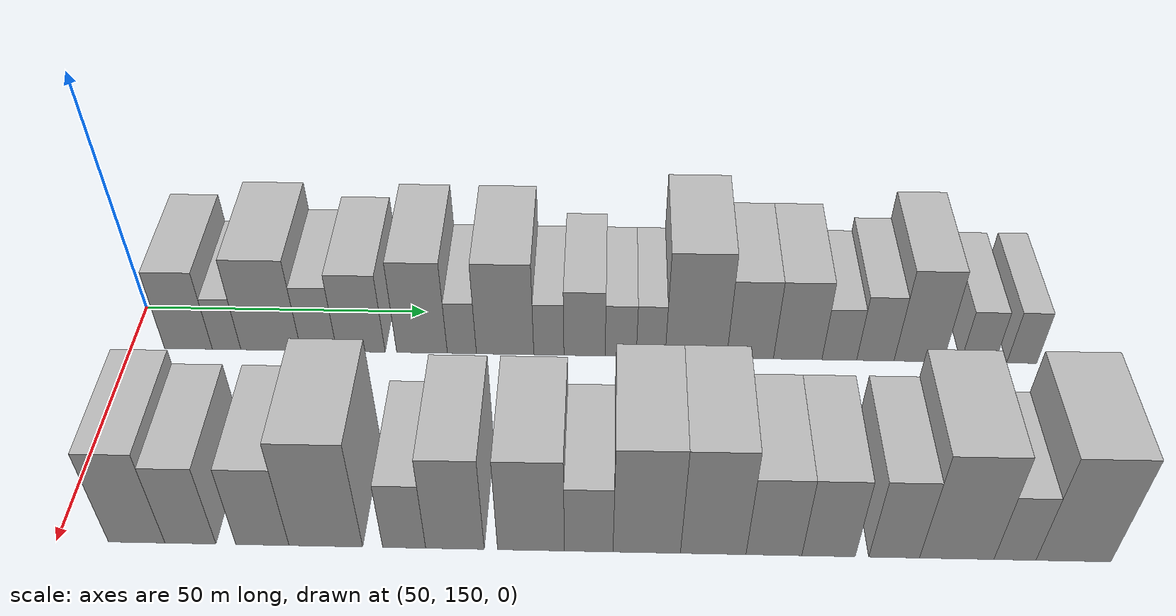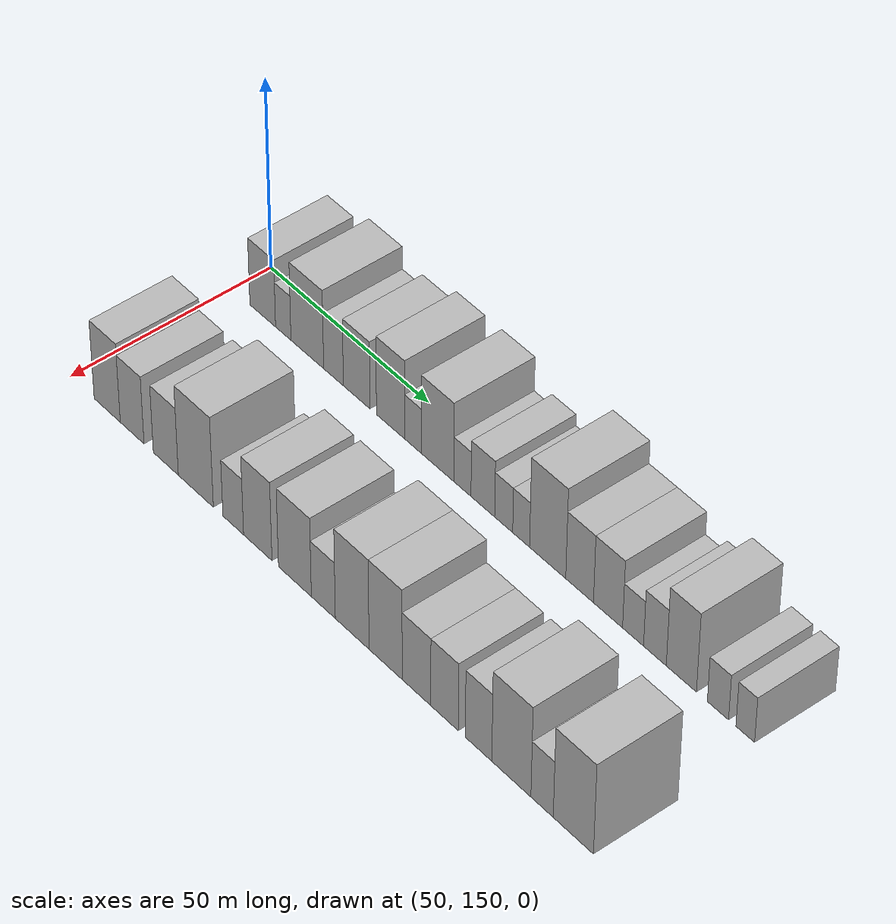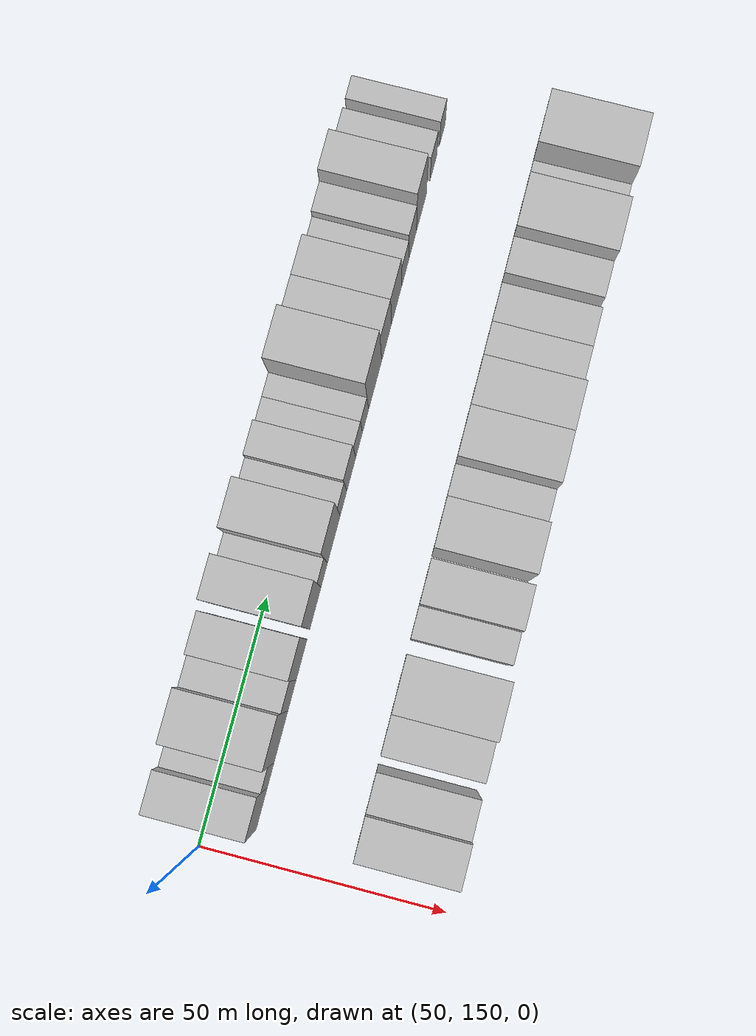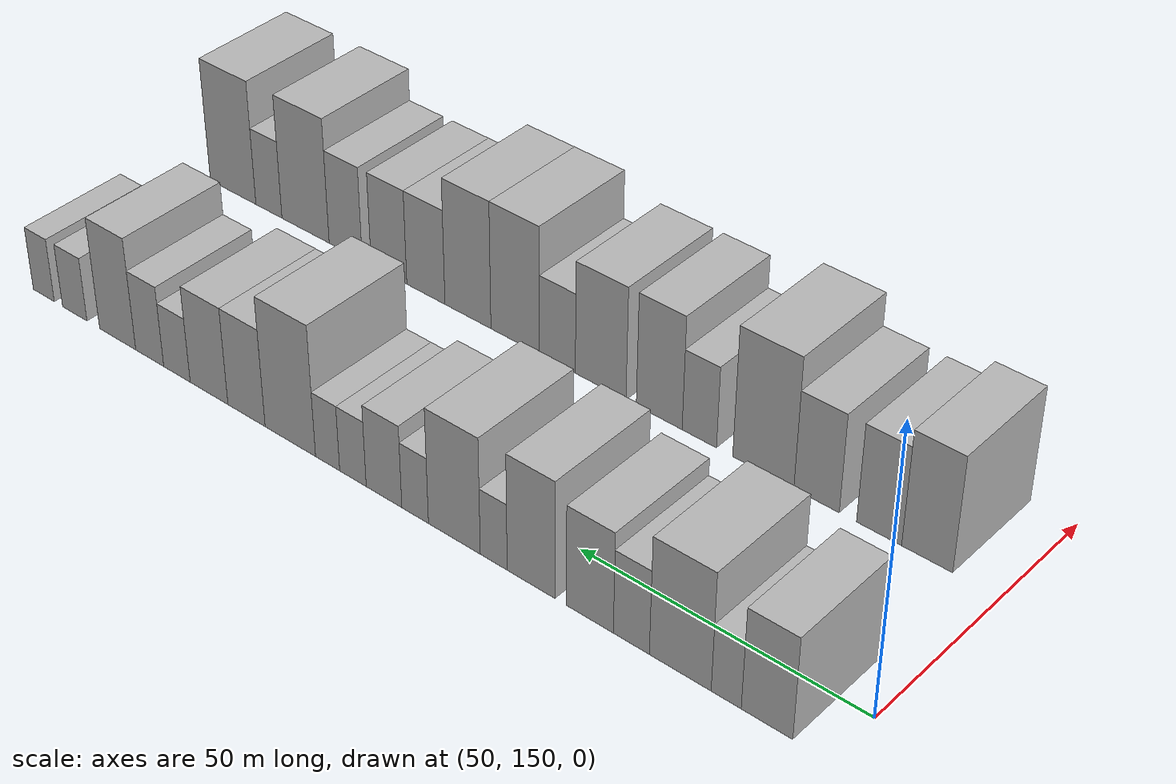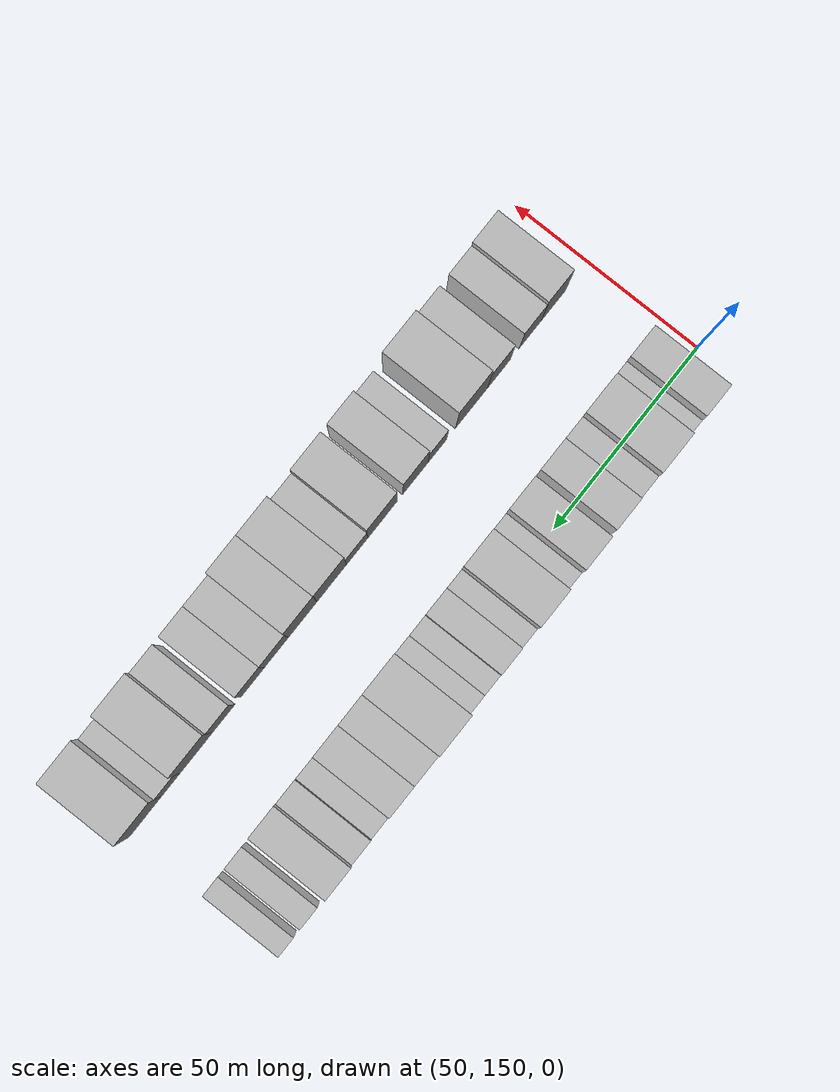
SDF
<sdf version="1.6">
 <world name="default">
  <model name="building_53">
   <static>1</static>
   <pose>50.0000 159.9945 0 0.000000 0.000000 0.000000</pose>
   <link name="link">
    <pose>0 0 9.00 0 0 0</pose>
    <collision name="collision"><geometry><box><size>20.0000 8.3284 18.0000</size></box></geometry></collision>
    <visual name="visual">
     <cast_shadows>0</cast_shadows>
     <geometry><box><size>20.0000 8.3284 18.0000</size></box></geometry>
     <material>
      <script>
       <uri>model://HANNAS_wall/materials/scripts</uri>
       <uri>model://HANNAS_wall/materials/textures</uri>
       <name>vrc/HANNAS_wall</name>
      </script>
     </material>
    </visual>
   </link>
  </model>
  <model name="building_54">
   <static>1</static>
   <pose>50.0000 166.6386 0 0.000000 0.000000 0.000000</pose>
   <link name="link">
    <pose>0 0 6.00 0 0 0</pose>
    <collision name="collision"><geometry><box><size>20.0000 4.9598 12.0000</size></box></geometry></collision>
    <visual name="visual">
     <cast_shadows>0</cast_shadows>
     <geometry><box><size>20.0000 4.9598 12.0000</size></box></geometry>
     <material>
      <script>
       <uri>model://HANNAS_wall/materials/scripts</uri>
       <uri>model://HANNAS_wall/materials/textures</uri>
       <name>vrc/HANNAS_wall</name>
      </script>
     </material>
    </visual>
   </link>
  </model>
  <model name="building_55">
   <static>1</static>
   <pose>50.0000 174.3444 0 0.000000 0.000000 0.000000</pose>
   <link name="link">
    <pose>0 0 10.50 0 0 0</pose>
    <collision name="collision"><geometry><box><size>20.0000 10.4516 21.0000</size></box></geometry></collision>
    <visual name="visual">
     <cast_shadows>0</cast_shadows>
     <geometry><box><size>20.0000 10.4516 21.0000</size></box></geometry>
     <material>
      <script>
       <uri>model://HANNAS_wall/materials/scripts</uri>
       <uri>model://HANNAS_wall/materials/textures</uri>
       <name>vrc/HANNAS_wall</name>
      </script>
     </material>
    </visual>
   </link>
  </model>
  <model name="building_56">
   <static>1</static>
   <pose>50.0000 182.6839 0 0.000000 0.000000 0.000000</pose>
   <link name="link">
    <pose>0 0 7.50 0 0 0</pose>
    <collision name="collision"><geometry><box><size>20.0000 6.2274 15.0000</size></box></geometry></collision>
    <visual name="visual">
     <cast_shadows>0</cast_shadows>
     <geometry><box><size>20.0000 6.2274 15.0000</size></box></geometry>
     <material>
      <script>
       <uri>model://HANNAS_wall/materials/scripts</uri>
       <uri>model://HANNAS_wall/materials/textures</uri>
       <name>vrc/HANNAS_wall</name>
      </script>
     </material>
    </visual>
   </link>
  </model>
  <model name="building_57">
   <static>1</static>
   <pose>50.0000 189.9782 0 0.000000 0.000000 0.000000</pose>
   <link name="link">
    <pose>0 0 9.00 0 0 0</pose>
    <collision name="collision"><geometry><box><size>20.0000 8.3613 18.0000</size></box></geometry></collision>
    <visual name="visual">
     <cast_shadows>0</cast_shadows>
     <geometry><box><size>20.0000 8.3613 18.0000</size></box></geometry>
     <material>
      <script>
       <uri>model://HANNAS_wall/materials/scripts</uri>
       <uri>model://HANNAS_wall/materials/textures</uri>
       <name>vrc/HANNAS_wall</name>
      </script>
     </material>
    </visual>
   </link>
  </model>
  <model name="building_58">
   <static>1</static>
   <pose>50.0000 200.5402 0 0.000000 0.000000 0.000000</pose>
   <link name="link">
    <pose>0 0 10.50 0 0 0</pose>
    <collision name="collision"><geometry><box><size>20.0000 8.7629 21.0000</size></box></geometry></collision>
    <visual name="visual">
     <cast_shadows>0</cast_shadows>
     <geometry><box><size>20.0000 8.7629 21.0000</size></box></geometry>
     <material>
      <script>
       <uri>model://HANNAS_wall/materials/scripts</uri>
       <uri>model://HANNAS_wall/materials/textures</uri>
       <name>vrc/HANNAS_wall</name>
      </script>
     </material>
    </visual>
   </link>
  </model>
  <model name="building_59">
   <static>1</static>
   <pose>50.0000 207.4315 0 0.000000 0.000000 0.000000</pose>
   <link name="link">
    <pose>0 0 6.00 0 0 0</pose>
    <collision name="collision"><geometry><box><size>20.0000 5.0197 12.0000</size></box></geometry></collision>
    <visual name="visual">
     <cast_shadows>0</cast_shadows>
     <geometry><box><size>20.0000 5.0197 12.0000</size></box></geometry>
     <material>
      <script>
       <uri>model://HANNAS_wall/materials/scripts</uri>
       <uri>model://HANNAS_wall/materials/textures</uri>
       <name>vrc/HANNAS_wall</name>
      </script>
     </material>
    </visual>
   </link>
  </model>
  <model name="building_60">
   <static>1</static>
   <pose>50.0000 214.8930 0 0.000000 0.000000 0.000000</pose>
   <link name="link">
    <pose>0 0 10.50 0 0 0</pose>
    <collision name="collision"><geometry><box><size>20.0000 9.9031 21.0000</size></box></geometry></collision>
    <visual name="visual">
     <cast_shadows>0</cast_shadows>
     <geometry><box><size>20.0000 9.9031 21.0000</size></box></geometry>
     <material>
      <script>
       <uri>model://HANNAS_wall/materials/scripts</uri>
       <uri>model://HANNAS_wall/materials/textures</uri>
       <name>vrc/HANNAS_wall</name>
      </script>
     </material>
    </visual>
   </link>
  </model>
  <model name="building_61">
   <static>1</static>
   <pose>50.0000 222.4428 0 0.000000 0.000000 0.000000</pose>
   <link name="link">
    <pose>0 0 6.00 0 0 0</pose>
    <collision name="collision"><geometry><box><size>20.0000 5.1965 12.0000</size></box></geometry></collision>
    <visual name="visual">
     <cast_shadows>0</cast_shadows>
     <geometry><box><size>20.0000 5.1965 12.0000</size></box></geometry>
     <material>
      <script>
       <uri>model://HANNAS_wall/materials/scripts</uri>
       <uri>model://HANNAS_wall/materials/textures</uri>
       <name>vrc/HANNAS_wall</name>
      </script>
     </material>
    </visual>
   </link>
  </model>
  <model name="building_62">
   <static>1</static>
   <pose>50.0000 228.5811 0 0.000000 0.000000 0.000000</pose>
   <link name="link">
    <pose>0 0 7.50 0 0 0</pose>
    <collision name="collision"><geometry><box><size>20.0000 7.0801 15.0000</size></box></geometry></collision>
    <visual name="visual">
     <cast_shadows>0</cast_shadows>
     <geometry><box><size>20.0000 7.0801 15.0000</size></box></geometry>
     <material>
      <script>
       <uri>model://HANNAS_wall/materials/scripts</uri>
       <uri>model://HANNAS_wall/materials/textures</uri>
       <name>vrc/HANNAS_wall</name>
      </script>
     </material>
    </visual>
   </link>
  </model>
  <model name="building_63">
   <static>1</static>
   <pose>50.0000 234.8005 0 0.000000 0.000000 0.000000</pose>
   <link name="link">
    <pose>0 0 6.00 0 0 0</pose>
    <collision name="collision"><geometry><box><size>20.0000 5.3588 12.0000</size></box></geometry></collision>
    <visual name="visual">
     <cast_shadows>0</cast_shadows>
     <geometry><box><size>20.0000 5.3588 12.0000</size></box></geometry>
     <material>
      <script>
       <uri>model://HANNAS_wall/materials/scripts</uri>
       <uri>model://HANNAS_wall/materials/textures</uri>
       <name>vrc/HANNAS_wall</name>
      </script>
     </material>
    </visual>
   </link>
  </model>
  <model name="building_64">
   <static>1</static>
   <pose>50.0000 239.9629 0 0.000000 0.000000 0.000000</pose>
   <link name="link">
    <pose>0 0 6.00 0 0 0</pose>
    <collision name="collision"><geometry><box><size>20.0000 4.9660 12.0000</size></box></geometry></collision>
    <visual name="visual">
     <cast_shadows>0</cast_shadows>
     <geometry><box><size>20.0000 4.9660 12.0000</size></box></geometry>
     <material>
      <script>
       <uri>model://HANNAS_wall/materials/scripts</uri>
       <uri>model://HANNAS_wall/materials/textures</uri>
       <name>vrc/HANNAS_wall</name>
      </script>
     </material>
    </visual>
   </link>
  </model>
  <model name="building_65">
   <static>1</static>
   <pose>50.0000 247.7345 0 0.000000 0.000000 0.000000</pose>
   <link name="link">
    <pose>0 0 12.00 0 0 0</pose>
    <collision name="collision"><geometry><box><size>20.0000 10.5771 24.0000</size></box></geometry></collision>
    <visual name="visual">
     <cast_shadows>0</cast_shadows>
     <geometry><box><size>20.0000 10.5771 24.0000</size></box></geometry>
     <material>
      <script>
       <uri>model://HANNAS_wall/materials/scripts</uri>
       <uri>model://HANNAS_wall/materials/textures</uri>
       <name>vrc/HANNAS_wall</name>
      </script>
     </material>
    </visual>
   </link>
  </model>
  <model name="building_66">
   <static>1</static>
   <pose>50.0000 257.0265 0 0.000000 0.000000 0.000000</pose>
   <link name="link">
    <pose>0 0 9.00 0 0 0</pose>
    <collision name="collision"><geometry><box><size>20.0000 8.0067 18.0000</size></box></geometry></collision>
    <visual name="visual">
     <cast_shadows>0</cast_shadows>
     <geometry><box><size>20.0000 8.0067 18.0000</size></box></geometry>
     <material>
      <script>
       <uri>model://HANNAS_wall/materials/scripts</uri>
       <uri>model://HANNAS_wall/materials/textures</uri>
       <name>vrc/HANNAS_wall</name>
      </script>
     </material>
    </visual>
   </link>
  </model>
  <model name="building_67">
   <static>1</static>
   <pose>50.0000 265.1868 0 0.000000 0.000000 0.000000</pose>
   <link name="link">
    <pose>0 0 9.00 0 0 0</pose>
    <collision name="collision"><geometry><box><size>20.0000 8.3139 18.0000</size></box></geometry></collision>
    <visual name="visual">
     <cast_shadows>0</cast_shadows>
     <geometry><box><size>20.0000 8.3139 18.0000</size></box></geometry>
     <material>
      <script>
       <uri>model://HANNAS_wall/materials/scripts</uri>
       <uri>model://HANNAS_wall/materials/textures</uri>
       <name>vrc/HANNAS_wall</name>
      </script>
     </material>
    </visual>
   </link>
  </model>
  <model name="building_68">
   <static>1</static>
   <pose>50.0000 272.3159 0 0.000000 0.000000 0.000000</pose>
   <link name="link">
    <pose>0 0 6.00 0 0 0</pose>
    <collision name="collision"><geometry><box><size>20.0000 5.9443 12.0000</size></box></geometry></collision>
    <visual name="visual">
     <cast_shadows>0</cast_shadows>
     <geometry><box><size>20.0000 5.9443 12.0000</size></box></geometry>
     <material>
      <script>
       <uri>model://HANNAS_wall/materials/scripts</uri>
       <uri>model://HANNAS_wall/materials/textures</uri>
       <name>vrc/HANNAS_wall</name>
      </script>
     </material>
    </visual>
   </link>
  </model>
  <model name="building_69">
   <static>1</static>
   <pose>50.0000 278.4816 0 0.000000 0.000000 0.000000</pose>
   <link name="link">
    <pose>0 0 7.50 0 0 0</pose>
    <collision name="collision"><geometry><box><size>20.0000 6.3872 15.0000</size></box></geometry></collision>
    <visual name="visual">
     <cast_shadows>0</cast_shadows>
     <geometry><box><size>20.0000 6.3872 15.0000</size></box></geometry>
     <material>
      <script>
       <uri>model://HANNAS_wall/materials/scripts</uri>
       <uri>model://HANNAS_wall/materials/textures</uri>
       <name>vrc/HANNAS_wall</name>
      </script>
     </material>
    </visual>
   </link>
  </model>
  <model name="building_70">
   <static>1</static>
   <pose>50.0000 285.8795 0 0.000000 0.000000 0.000000</pose>
   <link name="link">
    <pose>0 0 10.50 0 0 0</pose>
    <collision name="collision"><geometry><box><size>20.0000 8.4086 21.0000</size></box></geometry></collision>
    <visual name="visual">
     <cast_shadows>0</cast_shadows>
     <geometry><box><size>20.0000 8.4086 21.0000</size></box></geometry>
     <material>
      <script>
       <uri>model://HANNAS_wall/materials/scripts</uri>
       <uri>model://HANNAS_wall/materials/textures</uri>
       <name>vrc/HANNAS_wall</name>
      </script>
     </material>
    </visual>
   </link>
  </model>
  <model name="building_71">
   <static>1</static>
   <pose>50.0000 296.0022 0 0.000000 0.000000 0.000000</pose>
   <link name="link">
    <pose>0 0 6.00 0 0 0</pose>
    <collision name="collision"><geometry><box><size>20.0000 5.8367 12.0000</size></box></geometry></collision>
    <visual name="visual">
     <cast_shadows>0</cast_shadows>
     <geometry><box><size>20.0000 5.8367 12.0000</size></box></geometry>
     <material>
      <script>
       <uri>model://HANNAS_wall/materials/scripts</uri>
       <uri>model://HANNAS_wall/materials/textures</uri>
       <name>vrc/HANNAS_wall</name>
      </script>
     </material>
    </visual>
   </link>
  </model>
  <model name="building_72">
   <static>1</static>
   <pose>50.0000 303.4666 0 0.000000 0.000000 0.000000</pose>
   <link name="link">
    <pose>0 0 6.00 0 0 0</pose>
    <collision name="collision"><geometry><box><size>20.0000 5.0923 12.0000</size></box></geometry></collision>
    <visual name="visual">
     <cast_shadows>0</cast_shadows>
     <geometry><box><size>20.0000 5.0923 12.0000</size></box></geometry>
     <material>
      <script>
       <uri>model://HANNAS_wall/materials/scripts</uri>
       <uri>model://HANNAS_wall/materials/textures</uri>
       <name>vrc/HANNAS_wall</name>
      </script>
     </material>
    </visual>
   </link>
  </model>
  <model name="building_126">
   <static>1</static>
   <pose>90.0000 162.1043 0 0.000000 0.000000 0.000000</pose>
   <link name="link">
    <pose>0 0 10.50 0 0 0</pose>
    <collision name="collision"><geometry><box><size>20.0000 8.5504 21.0000</size></box></geometry></collision>
    <visual name="visual">
     <cast_shadows>0</cast_shadows>
     <geometry><box><size>20.0000 8.5504 21.0000</size></box></geometry>
     <material>
      <script>
       <uri>model://HANNAS_wall/materials/scripts</uri>
       <uri>model://HANNAS_wall/materials/textures</uri>
       <name>vrc/HANNAS_wall</name>
      </script>
     </material>
    </visual>
   </link>
  </model>
  <model name="building_127">
   <static>1</static>
   <pose>90.0000 170.2327 0 0.000000 0.000000 0.000000</pose>
   <link name="link">
    <pose>0 0 9.00 0 0 0</pose>
    <collision name="collision"><geometry><box><size>20.0000 7.7064 18.0000</size></box></geometry></collision>
    <visual name="visual">
     <cast_shadows>0</cast_shadows>
     <geometry><box><size>20.0000 7.7064 18.0000</size></box></geometry>
     <material>
      <script>
       <uri>model://HANNAS_wall/materials/scripts</uri>
       <uri>model://HANNAS_wall/materials/textures</uri>
       <name>vrc/HANNAS_wall</name>
      </script>
     </material>
    </visual>
   </link>
  </model>
  <model name="building_128">
   <static>1</static>
   <pose>90.0000 181.0953 0 0.000000 0.000000 0.000000</pose>
   <link name="link">
    <pose>0 0 9.00 0 0 0</pose>
    <collision name="collision"><geometry><box><size>20.0000 8.0189 18.0000</size></box></geometry></collision>
    <visual name="visual">
     <cast_shadows>0</cast_shadows>
     <geometry><box><size>20.0000 8.0189 18.0000</size></box></geometry>
     <material>
      <script>
       <uri>model://HANNAS_wall/materials/scripts</uri>
       <uri>model://HANNAS_wall/materials/textures</uri>
       <name>vrc/HANNAS_wall</name>
      </script>
     </material>
    </visual>
   </link>
  </model>
  <model name="building_129">
   <static>1</static>
   <pose>90.0000 190.6514 0 0.000000 0.000000 0.000000</pose>
   <link name="link">
    <pose>0 0 12.00 0 0 0</pose>
    <collision name="collision"><geometry><box><size>20.0000 11.0934 24.0000</size></box></geometry></collision>
    <visual name="visual">
     <cast_shadows>0</cast_shadows>
     <geometry><box><size>20.0000 11.0934 24.0000</size></box></geometry>
     <material>
      <script>
       <uri>model://HANNAS_wall/materials/scripts</uri>
       <uri>model://HANNAS_wall/materials/textures</uri>
       <name>vrc/HANNAS_wall</name>
      </script>
     </material>
    </visual>
   </link>
  </model>
  <model name="building_130">
   <static>1</static>
   <pose>90.0000 202.4271 0 0.000000 0.000000 0.000000</pose>
   <link name="link">
    <pose>0 0 7.50 0 0 0</pose>
    <collision name="collision"><geometry><box><size>20.0000 6.4581 15.0000</size></box></geometry></collision>
    <visual name="visual">
     <cast_shadows>0</cast_shadows>
     <geometry><box><size>20.0000 6.4581 15.0000</size></box></geometry>
     <material>
      <script>
       <uri>model://HANNAS_wall/materials/scripts</uri>
       <uri>model://HANNAS_wall/materials/textures</uri>
       <name>vrc/HANNAS_wall</name>
      </script>
     </material>
    </visual>
   </link>
  </model>
  <model name="building_131">
   <static>1</static>
   <pose>90.0000 210.0474 0 0.000000 0.000000 0.000000</pose>
   <link name="link">
    <pose>0 0 10.50 0 0 0</pose>
    <collision name="collision"><geometry><box><size>20.0000 8.7825 21.0000</size></box></geometry></collision>
    <visual name="visual">
     <cast_shadows>0</cast_shadows>
     <geometry><box><size>20.0000 8.7825 21.0000</size></box></geometry>
     <material>
      <script>
       <uri>model://HANNAS_wall/materials/scripts</uri>
       <uri>model://HANNAS_wall/materials/textures</uri>
       <name>vrc/HANNAS_wall</name>
      </script>
     </material>
    </visual>
   </link>
  </model>
  <model name="building_132">
   <static>1</static>
   <pose>90.0000 221.4480 0 0.000000 0.000000 0.000000</pose>
   <link name="link">
    <pose>0 0 10.50 0 0 0</pose>
    <collision name="collision"><geometry><box><size>20.0000 10.0185 21.0000</size></box></geometry></collision>
    <visual name="visual">
     <cast_shadows>0</cast_shadows>
     <geometry><box><size>20.0000 10.0185 21.0000</size></box></geometry>
     <material>
      <script>
       <uri>model://HANNAS_wall/materials/scripts</uri>
       <uri>model://HANNAS_wall/materials/textures</uri>
       <name>vrc/HANNAS_wall</name>
      </script>
     </material>
    </visual>
   </link>
  </model>
  <model name="building_133">
   <static>1</static>
   <pose>90.0000 230.0740 0 0.000000 0.000000 0.000000</pose>
   <link name="link">
    <pose>0 0 7.50 0 0 0</pose>
    <collision name="collision"><geometry><box><size>20.0000 7.2335 15.0000</size></box></geometry></collision>
    <visual name="visual">
     <cast_shadows>0</cast_shadows>
     <geometry><box><size>20.0000 7.2335 15.0000</size></box></geometry>
     <material>
      <script>
       <uri>model://HANNAS_wall/materials/scripts</uri>
       <uri>model://HANNAS_wall/materials/textures</uri>
       <name>vrc/HANNAS_wall</name>
      </script>
     </material>
    </visual>
   </link>
  </model>
  <model name="building_134">
   <static>1</static>
   <pose>90.0000 238.7240 0 0.000000 0.000000 0.000000</pose>
   <link name="link">
    <pose>0 0 12.00 0 0 0</pose>
    <collision name="collision"><geometry><box><size>20.0000 10.0665 24.0000</size></box></geometry></collision>
    <visual name="visual">
     <cast_shadows>0</cast_shadows>
     <geometry><box><size>20.0000 10.0665 24.0000</size></box></geometry>
     <material>
      <script>
       <uri>model://HANNAS_wall/materials/scripts</uri>
       <uri>model://HANNAS_wall/materials/textures</uri>
       <name>vrc/HANNAS_wall</name>
      </script>
     </material>
    </visual>
   </link>
  </model>
  <model name="building_135">
   <static>1</static>
   <pose>90.0000 248.6446 0 0.000000 0.000000 0.000000</pose>
   <link name="link">
    <pose>0 0 12.00 0 0 0</pose>
    <collision name="collision"><geometry><box><size>20.0000 9.7747 24.0000</size></box></geometry></collision>
    <visual name="visual">
     <cast_shadows>0</cast_shadows>
     <geometry><box><size>20.0000 9.7747 24.0000</size></box></geometry>
     <material>
      <script>
       <uri>model://HANNAS_wall/materials/scripts</uri>
       <uri>model://HANNAS_wall/materials/textures</uri>
       <name>vrc/HANNAS_wall</name>
      </script>
     </material>
    </visual>
   </link>
  </model>
  <model name="building_136">
   <static>1</static>
   <pose>90.0000 257.6832 0 0.000000 0.000000 0.000000</pose>
   <link name="link">
    <pose>0 0 9.00 0 0 0</pose>
    <collision name="collision"><geometry><box><size>20.0000 8.3025 18.0000</size></box></geometry></collision>
    <visual name="visual">
     <cast_shadows>0</cast_shadows>
     <geometry><box><size>20.0000 8.3025 18.0000</size></box></geometry>
     <material>
      <script>
       <uri>model://HANNAS_wall/materials/scripts</uri>
       <uri>model://HANNAS_wall/materials/textures</uri>
       <name>vrc/HANNAS_wall</name>
      </script>
     </material>
    </visual>
   </link>
  </model>
  <model name="building_137">
   <static>1</static>
   <pose>90.0000 265.8023 0 0.000000 0.000000 0.000000</pose>
   <link name="link">
    <pose>0 0 9.00 0 0 0</pose>
    <collision name="collision"><geometry><box><size>20.0000 7.9356 18.0000</size></box></geometry></collision>
    <visual name="visual">
     <cast_shadows>0</cast_shadows>
     <geometry><box><size>20.0000 7.9356 18.0000</size></box></geometry>
     <material>
      <script>
       <uri>model://HANNAS_wall/materials/scripts</uri>
       <uri>model://HANNAS_wall/materials/textures</uri>
       <name>vrc/HANNAS_wall</name>
      </script>
     </material>
    </visual>
   </link>
  </model>
  <model name="building_138">
   <static>1</static>
   <pose>90.0000 275.5402 0 0.000000 0.000000 0.000000</pose>
   <link name="link">
    <pose>0 0 9.00 0 0 0</pose>
    <collision name="collision"><geometry><box><size>20.0000 7.5403 18.0000</size></box></geometry></collision>
    <visual name="visual">
     <cast_shadows>0</cast_shadows>
     <geometry><box><size>20.0000 7.5403 18.0000</size></box></geometry>
     <material>
      <script>
       <uri>model://HANNAS_wall/materials/scripts</uri>
       <uri>model://HANNAS_wall/materials/textures</uri>
       <name>vrc/HANNAS_wall</name>
      </script>
     </material>
    </visual>
   </link>
  </model>
  <model name="building_139">
   <static>1</static>
   <pose>90.0000 284.8150 0 0.000000 0.000000 0.000000</pose>
   <link name="link">
    <pose>0 0 12.00 0 0 0</pose>
    <collision name="collision"><geometry><box><size>20.0000 11.0093 24.0000</size></box></geometry></collision>
    <visual name="visual">
     <cast_shadows>0</cast_shadows>
     <geometry><box><size>20.0000 11.0093 24.0000</size></box></geometry>
     <material>
      <script>
       <uri>model://HANNAS_wall/materials/scripts</uri>
       <uri>model://HANNAS_wall/materials/textures</uri>
       <name>vrc/HANNAS_wall</name>
      </script>
     </material>
    </visual>
   </link>
  </model>
  <model name="building_140">
   <static>1</static>
   <pose>90.0000 293.4279 0 0.000000 0.000000 0.000000</pose>
   <link name="link">
    <pose>0 0 7.50 0 0 0</pose>
    <collision name="collision"><geometry><box><size>20.0000 6.2165 15.0000</size></box></geometry></collision>
    <visual name="visual">
     <cast_shadows>0</cast_shadows>
     <geometry><box><size>20.0000 6.2165 15.0000</size></box></geometry>
     <material>
      <script>
       <uri>model://HANNAS_wall/materials/scripts</uri>
       <uri>model://HANNAS_wall/materials/textures</uri>
       <name>vrc/HANNAS_wall</name>
      </script>
     </material>
    </visual>
   </link>
  </model>
  <model name="building_141">
   <static>1</static>
   <pose>90.0000 302.0668 0 0.000000 0.000000 0.000000</pose>
   <link name="link">
    <pose>0 0 12.00 0 0 0</pose>
    <collision name="collision"><geometry><box><size>20.0000 11.0614 24.0000</size></box></geometry></collision>
    <visual name="visual">
     <cast_shadows>0</cast_shadows>
     <geometry><box><size>20.0000 11.0614 24.0000</size></box></geometry>
     <material>
      <script>
       <uri>model://HANNAS_wall/materials/scripts</uri>
       <uri>model://HANNAS_wall/materials/textures</uri>
       <name>vrc/HANNAS_wall</name>
      </script>
     </material>
    </visual>
   </link>
  </model>
 </world>
</sdf>
